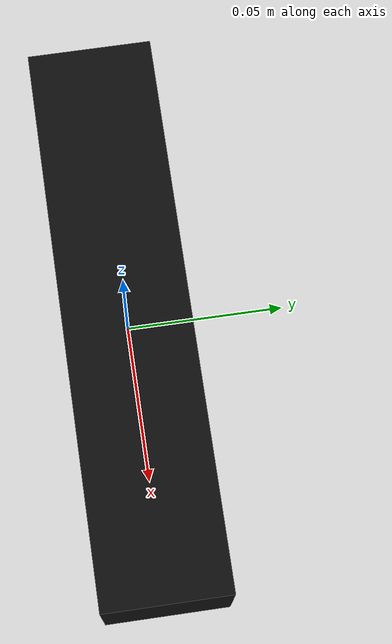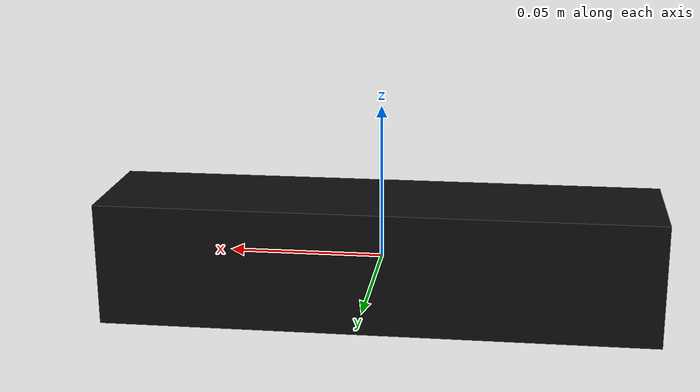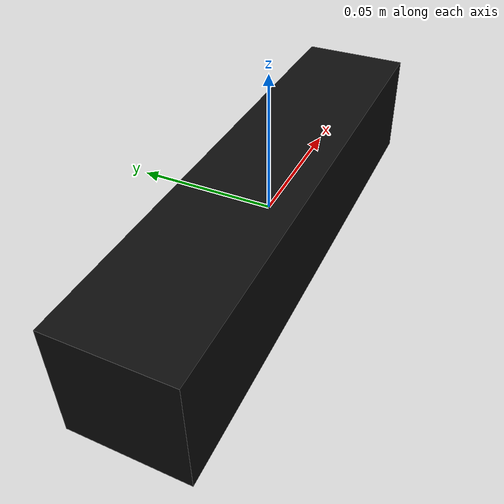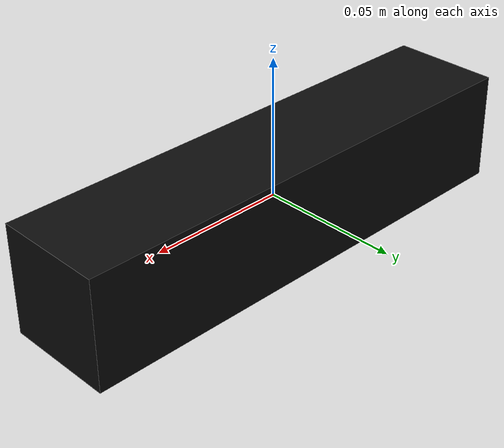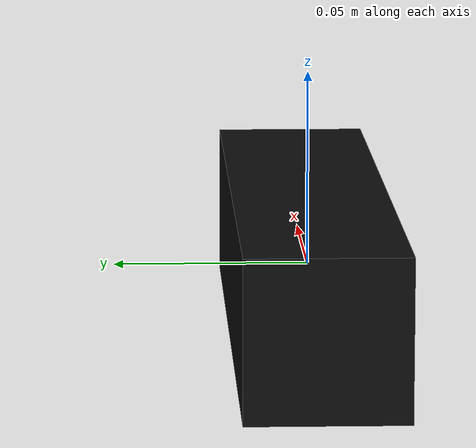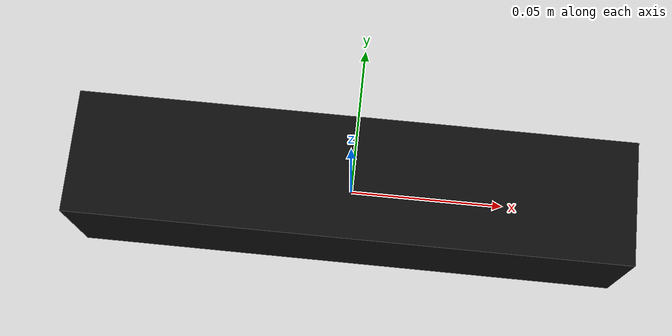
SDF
<?xml version="1.0"?>
<sdf version="1.9">
  <model name="static_d435i_camera">
    <static>true</static>
    <link name="camera_link">
      <visual name="body">
        <geometry><box><size>0.18 0.04 0.04</size></box></geometry>
        <material><ambient>0.05 0.05 0.05 1</ambient><diffuse>0.05 0.05 0.05 1</diffuse></material>
      </visual>
      <sensor name="hazard_d435i_rgbd" type="rgbd_camera">
        <pose>0 0 0 0 1.57079632679 0</pose>
        <always_on>1</always_on>
        <update_rate>30</update_rate>
        <topic>/hazard_d435i</topic>
        <camera>
          <horizontal_fov>1.5</horizontal_fov>
          <image>
            <width>1536</width>
            <height>1536</height>
            <format>R8G8B8</format>
          </image>
          <clip>
            <near>0.05</near>
            <far>20.0</far>
          </clip>
        </camera>
      </sensor>
    </link>
  </model>
</sdf>
